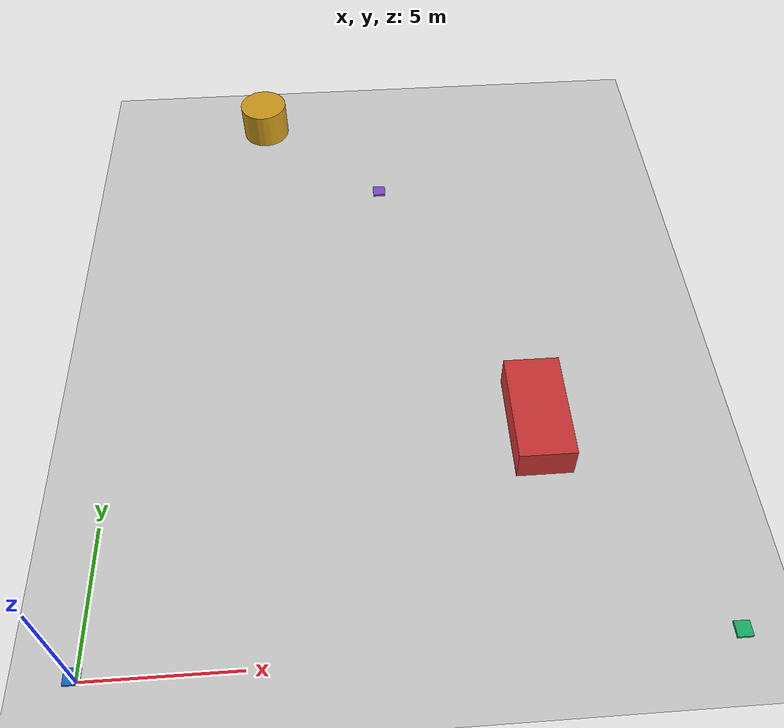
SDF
<?xml version="1.0" ?>
<sdf version="1.8">
  <world name="drone_world">

    <!-- Physics -->
    <physics name="1ms" type="ignored">
      <max_step_size>0.001</max_step_size>
      <real_time_factor>1.0</real_time_factor>
    </physics>

    <!-- Plugins -->
    <plugin filename="gz-sim-physics-system"
      name="gz::sim::systems::Physics">
    </plugin>
    <plugin filename="gz-sim-scene-broadcaster-system"
      name="gz::sim::systems::SceneBroadcaster">
    </plugin>

    <!-- Ground plane -->
    <model name="ground_plane">
      <static>true</static>
      <link name="link">
        <collision name="collision">
          <geometry>
            <plane>
              <normal>0 0 1</normal>
              <size>100 100</size>
            </plane>
          </geometry>
        </collision>
        <visual name="visual">
          <geometry>
            <plane>
              <normal>0 0 1</normal>
              <size>100 100</size>
            </plane>
          </geometry>
          <material>
            <ambient>0.8 0.8 0.8 1</ambient>
            <diffuse>0.8 0.8 0.8 1</diffuse>
          </material>
        </visual>
      </link>
    </model>

    <!-- Light -->
    <light type="directional" name="sun">
      <cast_shadows>true</cast_shadows>
      <pose>0 0 10 0 0 0</pose>
      <diffuse>1 1 1 1</diffuse>
      <specular>0.5 0.5 0.5 1</specular>
      <direction>-0.5 0.1 -0.9</direction>
    </light>

    <!-- Drone 1 -->
    <model name="drone_1">
      <pose>0 0 0.5 0 0 0</pose>
      <link name="body">
        <inertial>
          <mass>1.5</mass>
        </inertial>
        <visual name="visual">
          <geometry>
            <box>
              <size>0.5 0.5 0.1</size>
            </box>
          </geometry>
          <material>
            <ambient>0.1 0.4 0.8 1</ambient>
            <diffuse>0.1 0.4 0.8 1</diffuse>
          </material>
        </visual>
        <collision name="collision">
          <geometry>
            <box>
              <size>0.5 0.5 0.1</size>
            </box>
          </geometry>
        </collision>
      </link>
      <plugin filename="gz-sim-pose-publisher-system"
        name="gz::sim::systems::PosePublisher">
        <publish_link_pose>true</publish_link_pose>
        <update_frequency>10</update_frequency>
      </plugin>
    </model>

    <!-- Drone 2 -->
    <model name="drone_2">
      <pose>20 0 0.5 0 0 0</pose>
      <link name="body">
        <inertial>
          <mass>1.5</mass>
        </inertial>
        <visual name="visual">
          <geometry>
            <box>
              <size>0.5 0.5 0.1</size>
            </box>
          </geometry>
          <material>
            <ambient>0.1 0.7 0.4 1</ambient>
            <diffuse>0.1 0.7 0.4 1</diffuse>
          </material>
        </visual>
        <collision name="collision">
          <geometry>
            <box>
              <size>0.5 0.5 0.1</size>
            </box>
          </geometry>
        </collision>
      </link>
    </model>

    <!-- Drone 3 -->
    <model name="drone_3">
      <pose>10 20 0.5 0 0 0</pose>
      <link name="body">
        <inertial>
          <mass>1.5</mass>
        </inertial>
        <visual name="visual">
          <geometry>
            <box>
              <size>0.5 0.5 0.1</size>
            </box>
          </geometry>
          <material>
            <ambient>0.5 0.3 0.8 1</ambient>
            <diffuse>0.5 0.3 0.8 1</diffuse>
          </material>
        </visual>
        <collision name="collision">
          <geometry>
            <box>
              <size>0.5 0.5 0.1</size>
            </box>
          </geometry>
        </collision>
      </link>
    </model>

    <!-- Target objects -->
    <model name="target_1">
      <pose>15 8 0.5 0 0 0</pose>
      <static>true</static>
      <link name="link">
        <visual name="visual">
          <geometry>
            <box>
              <size>2 4 1.5</size>
            </box>
          </geometry>
          <material>
            <ambient>0.8 0.2 0.2 1</ambient>
            <diffuse>0.8 0.2 0.2 1</diffuse>
          </material>
        </visual>
        <collision name="collision">
          <geometry>
            <box>
              <size>2 4 1.5</size>
            </box>
          </geometry>
        </collision>
      </link>
    </model>

    <model name="target_2">
      <pose>5 25 0.5 0 0 0</pose>
      <static>true</static>
      <link name="link">
        <visual name="visual">
          <geometry>
            <cylinder>
              <radius>1</radius>
              <length>2</length>
            </cylinder>
          </geometry>
          <material>
            <ambient>0.8 0.6 0.1 1</ambient>
            <diffuse>0.8 0.6 0.1 1</diffuse>
          </material>
        </visual>
        <collision name="collision">
          <geometry>
            <cylinder>
              <radius>1</radius>
              <length>2</length>
            </cylinder>
          </geometry>
        </collision>
      </link>
    </model>

  </world>
</sdf>
